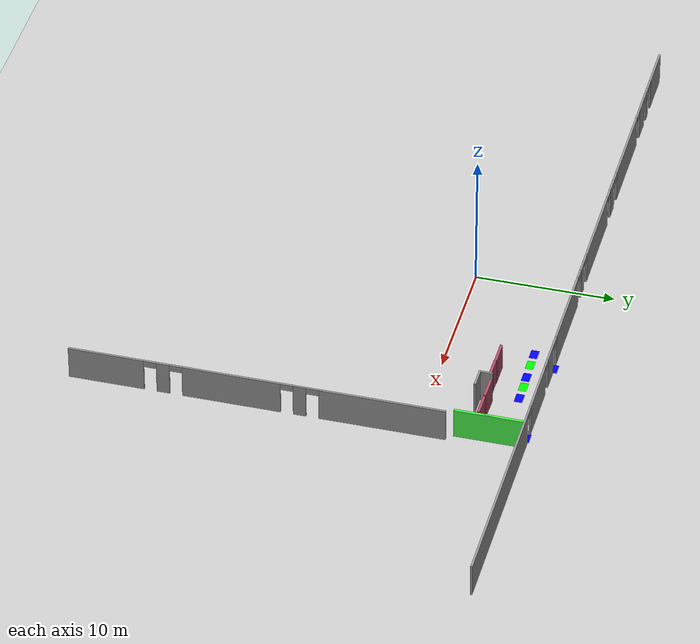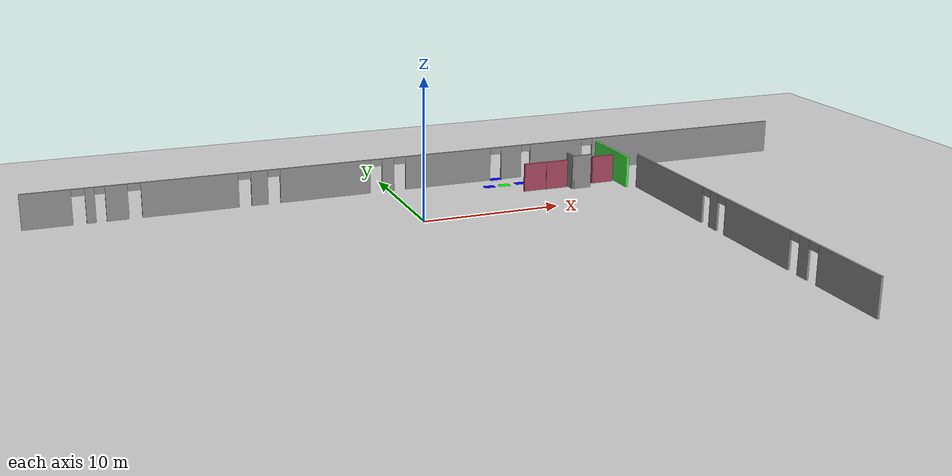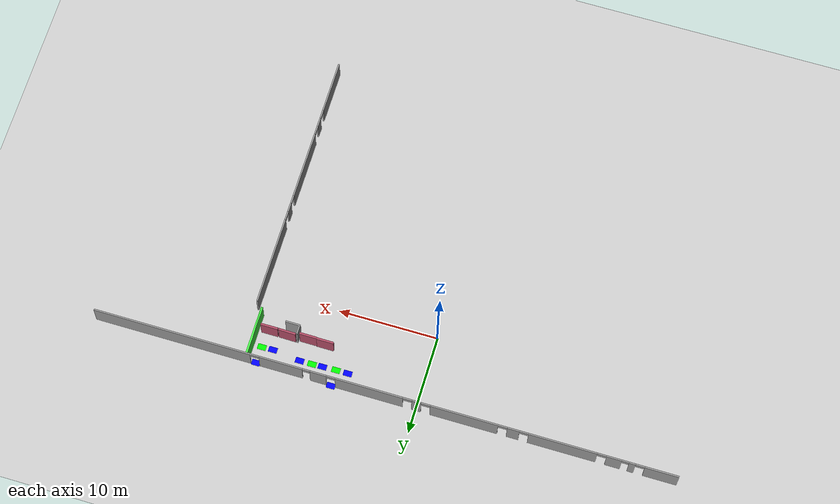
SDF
<sdf version="1.6">
 <world name="default">
  <model name="ground_plane">
   <pose>0 0 0.001 0 -0 0</pose>
   <static>1</static>
   <link name="link">
    <collision name="collision">
     <geometry><plane><normal>0 0 1</normal><size>100 100</size></plane></geometry>
     <surface><friction><ode><mu>100</mu><mu2>50</mu2></ode></friction></surface>
    </collision>
    <visual name="visual">
     <cast_shadows>0</cast_shadows>
     <geometry><plane><normal>0 0 1</normal><size>100 100</size></plane></geometry>
     <material>
      <script><uri>file://media/materials/scripts/gazebo.material</uri><name>Gazebo/Grey</name></script>
     </material>
    </visual>
   </link>
  </model>
  <model name="fin_se1f1.sdf">
   <pose>1.8125 -2.2901 0 0 -0 0</pose>
   <link name="Wall_164">
    <pose>15.8018 -8.91404 0 0 0 -1.5708</pose>
    <visual name="Wall_164_Visual_0">
     <pose>-8.91283 0 1.25 0 -0 0</pose>
     <geometry><box><size>8.92434 0.15 2.5</size></box></geometry>
     <material>
      <script><uri>file://media/materials/scripts/gazebo.material</uri><name>Gazebo/Grey</name></script>
      <ambient>1 1 1 1</ambient>
     </material>
     <meta><layer>0</layer></meta>
    </visual>
    <collision name="Wall_164_Collision_0">
     <geometry><box><size>8.92434 0.15 2.5</size></box></geometry>
     <pose>-8.91283 0 1.25 0 -0 0</pose>
    </collision>
    <visual name="Wall_164_Visual_1">
     <pose>-3.09555 0 1.25 0 -0 0</pose>
     <geometry><box><size>0.910221 0.15 2.5</size></box></geometry>
     <material>
      <script><uri>file://media/materials/scripts/gazebo.material</uri><name>Gazebo/Grey</name></script>
      <ambient>1 1 1 1</ambient>
     </material>
     <meta><layer>0</layer></meta>
    </visual>
    <collision name="Wall_164_Collision_1">
     <geometry><box><size>0.910221 0.15 2.5</size></box></geometry>
     <pose>-3.09555 0 1.25 0 -0 0</pose>
    </collision>
    <visual name="Wall_164_Visual_2">
     <pose>1.75182 0 1.25 0 -0 0</pose>
     <geometry><box><size>6.98452 0.15 2.5</size></box></geometry>
     <material>
      <script><uri>file://media/materials/scripts/gazebo.material</uri><name>Gazebo/Grey</name></script>
      <ambient>1 1 1 1</ambient>
     </material>
     <meta><layer>0</layer></meta>
    </visual>
    <collision name="Wall_164_Collision_2">
     <geometry><box><size>6.98452 0.15 2.5</size></box></geometry>
     <pose>1.75182 0 1.25 0 -0 0</pose>
    </collision>
    <visual name="Wall_164_Visual_3">
     <pose>6.60925 0 1.25 0 -0 0</pose>
     <geometry><box><size>0.930335 0.15 2.5</size></box></geometry>
     <material>
      <script><uri>file://media/materials/scripts/gazebo.material</uri><name>Gazebo/Grey</name></script>
      <ambient>1 1 1 1</ambient>
     </material>
     <meta><layer>0</layer></meta>
    </visual>
    <collision name="Wall_164_Collision_3">
     <geometry><box><size>0.930335 0.15 2.5</size></box></geometry>
     <pose>6.60925 0 1.25 0 -0 0</pose>
    </collision>
    <visual name="Wall_164_Visual_4">
     <pose>10.6747 0 1.25 0 -0 0</pose>
     <geometry><box><size>5.40058 0.15 2.5</size></box></geometry>
     <material>
      <script><uri>file://media/materials/scripts/gazebo.material</uri><name>Gazebo/Grey</name></script>
      <ambient>1 1 1 1</ambient>
     </material>
     <meta><layer>0</layer></meta>
    </visual>
    <collision name="Wall_164_Collision_4">
     <geometry><box><size>5.40058 0.15 2.5</size></box></geometry>
     <pose>10.6747 0 1.25 0 -0 0</pose>
    </collision>
    <visual name="Wall_164_Visual_5">
     <pose>-4.00066 0 2.25 0 -0 0</pose>
     <geometry><box><size>0.9 0.15 0.5</size></box></geometry>
     <material>
      <script><uri>file://media/materials/scripts/gazebo.material</uri><name>Gazebo/Grey</name></script>
      <ambient>1 1 1 1</ambient>
     </material>
     <meta><layer>0</layer></meta>
    </visual>
    <collision name="Wall_164_Collision_5">
     <geometry><box><size>0.9 0.15 0.5</size></box></geometry>
     <pose>-4.00066 0 2.25 0 -0 0</pose>
    </collision>
    <visual name="Wall_164_Visual_6">
     <pose>-2.19044 0 2.25 0 -0 0</pose>
     <geometry><box><size>0.9 0.15 0.5</size></box></geometry>
     <material>
      <script><uri>file://media/materials/scripts/gazebo.material</uri><name>Gazebo/Grey</name></script>
      <ambient>1 1 1 1</ambient>
     </material>
     <meta><layer>0</layer></meta>
    </visual>
    <collision name="Wall_164_Collision_6">
     <geometry><box><size>0.9 0.15 0.5</size></box></geometry>
     <pose>-2.19044 0 2.25 0 -0 0</pose>
    </collision>
    <visual name="Wall_164_Visual_7">
     <pose>5.69408 0 2.25 0 -0 0</pose>
     <geometry><box><size>0.9 0.15 0.5</size></box></geometry>
     <material>
      <script><uri>file://media/materials/scripts/gazebo.material</uri><name>Gazebo/Grey</name></script>
      <ambient>1 1 1 1</ambient>
     </material>
     <meta><layer>0</layer></meta>
    </visual>
    <collision name="Wall_164_Collision_7">
     <geometry><box><size>0.9 0.15 0.5</size></box></geometry>
     <pose>5.69408 0 2.25 0 -0 0</pose>
    </collision>
    <visual name="Wall_164_Visual_8">
     <pose>7.52442 0 2.25 0 -0 0</pose>
     <geometry><box><size>0.9 0.15 0.5</size></box></geometry>
     <material>
      <script><uri>file://media/materials/scripts/gazebo.material</uri><name>Gazebo/Grey</name></script>
      <ambient>1 1 1 1</ambient>
     </material>
     <meta><layer>0</layer></meta>
    </visual>
    <collision name="Wall_164_Collision_8">
     <geometry><box><size>0.9 0.15 0.5</size></box></geometry>
     <pose>7.52442 0 2.25 0 -0 0</pose>
    </collision>
   </link>
   <link name="Wall_2">
    <collision name="Wall_2_Collision">
     <geometry><box><size>1 0.15 2.5</size></box></geometry>
     <pose>0 0 1.25 0 -0 0</pose>
    </collision>
    <visual name="Wall_2_Visual">
     <pose>0 0 1.25 0 -0 0</pose>
     <geometry><box><size>1 0.15 2.5</size></box></geometry>
     <material>
      <script><uri>file://media/materials/scripts/gazebo.material</uri><name>Gazebo/Grey</name></script>
      <ambient>1 1 1 1</ambient>
     </material>
     <meta><layer>0</layer></meta>
    </visual>
    <pose>11.1004 6.09957 0 0 0 -1.5708</pose>
   </link>
   <link name="Wall_3">
    <collision name="Wall_3_Collision">
     <geometry><box><size>1.5 0.15 2.5</size></box></geometry>
     <pose>0 0 1.25 0 -0 0</pose>
    </collision>
    <visual name="Wall_3_Visual">
     <pose>0 0 1.25 0 -0 0</pose>
     <geometry><box><size>1.5 0.15 2.5</size></box></geometry>
     <material>
      <script><uri>file://media/materials/scripts/gazebo.material</uri><name>Gazebo/Grey</name></script>
      <ambient>1 1 1 1</ambient>
     </material>
     <meta><layer>0</layer></meta>
    </visual>
    <pose>11.7754 5.67457 0.001 0 -0 0</pose>
   </link>
   <link name="Wall_30">
    <pose>1.50043 9.87457 0.001 0 -0 0</pose>
    <visual name="Wall_30_Visual_0">
     <pose>-27.4547 0 1.25 0 -0 0</pose>
     <geometry><box><size>3.34055 0.15 2.5</size></box></geometry>
     <material>
      <script><uri>file://media/materials/scripts/gazebo.material</uri><name>Gazebo/Grey</name></script>
      <ambient>1 1 1 1</ambient>
     </material>
     <meta><layer>0</layer></meta>
    </visual>
    <collision name="Wall_30_Collision_0">
     <geometry><box><size>3.34055 0.15 2.5</size></box></geometry>
     <pose>-27.4547 0 1.25 0 -0 0</pose>
    </collision>
    <visual name="Wall_30_Visual_1">
     <pose>-24.5701 0 1.25 0 -0 0</pose>
     <geometry><box><size>0.628632 0.15 2.5</size></box></geometry>
     <material>
      <script><uri>file://media/materials/scripts/gazebo.material</uri><name>Gazebo/Grey</name></script>
      <ambient>1 1 1 1</ambient>
     </material>
     <meta><layer>0</layer></meta>
    </visual>
    <collision name="Wall_30_Collision_1">
     <geometry><box><size>0.628632 0.15 2.5</size></box></geometry>
     <pose>-24.5701 0 1.25 0 -0 0</pose>
    </collision>
    <visual name="Wall_30_Visual_2">
     <pose>-22.8102 0 1.25 0 -0 0</pose>
     <geometry><box><size>1.49352 0.15 2.5</size></box></geometry>
     <material>
      <script><uri>file://media/materials/scripts/gazebo.material</uri><name>Gazebo/Grey</name></script>
      <ambient>1 1 1 1</ambient>
     </material>
     <meta><layer>0</layer></meta>
    </visual>
    <collision name="Wall_30_Collision_2">
     <geometry><box><size>1.49352 0.15 2.5</size></box></geometry>
     <pose>-22.8102 0 1.25 0 -0 0</pose>
    </collision>
    <visual name="Wall_30_Visual_3">
     <pose>-17.8019 0 1.25 0 -0 0</pose>
     <geometry><box><size>6.72304 0.15 2.5</size></box></geometry>
     <material>
      <script><uri>file://media/materials/scripts/gazebo.material</uri><name>Gazebo/Grey</name></script>
      <ambient>1 1 1 1</ambient>
     </material>
     <meta><layer>0</layer></meta>
    </visual>
    <collision name="Wall_30_Collision_3">
     <geometry><box><size>6.72304 0.15 2.5</size></box></geometry>
     <pose>-17.8019 0 1.25 0 -0 0</pose>
    </collision>
    <visual name="Wall_30_Visual_4">
     <pose>-12.9445 0 1.25 0 -0 0</pose>
     <geometry><box><size>1.19181 0.15 2.5</size></box></geometry>
     <material>
      <script><uri>file://media/materials/scripts/gazebo.material</uri><name>Gazebo/Grey</name></script>
      <ambient>1 1 1 1</ambient>
     </material>
     <meta><layer>0</layer></meta>
    </visual>
    <collision name="Wall_30_Collision_4">
     <geometry><box><size>1.19181 0.15 2.5</size></box></geometry>
     <pose>-12.9445 0 1.25 0 -0 0</pose>
    </collision>
    <visual name="Wall_30_Visual_5">
     <pose>-8.09712 0 1.25 0 -0 0</pose>
     <geometry><box><size>6.70293 0.15 2.5</size></box></geometry>
     <material>
      <script><uri>file://media/materials/scripts/gazebo.material</uri><name>Gazebo/Grey</name></script>
      <ambient>1 1 1 1</ambient>
     </material>
     <meta><layer>0</layer></meta>
    </visual>
    <collision name="Wall_30_Collision_5">
     <geometry><box><size>6.70293 0.15 2.5</size></box></geometry>
     <pose>-8.09712 0 1.25 0 -0 0</pose>
    </collision>
    <visual name="Wall_30_Visual_6">
     <pose>-3.38049 0 1.25 0 -0 0</pose>
     <geometry><box><size>0.930335 0.15 2.5</size></box></geometry>
     <material>
      <script><uri>file://media/materials/scripts/gazebo.material</uri><name>Gazebo/Grey</name></script>
      <ambient>1 1 1 1</ambient>
     </material>
     <meta><layer>0</layer></meta>
    </visual>
    <collision name="Wall_30_Collision_6">
     <geometry><box><size>0.930335 0.15 2.5</size></box></geometry>
     <pose>-3.38049 0 1.25 0 -0 0</pose>
    </collision>
    <visual name="Wall_30_Visual_7">
     <pose>1.35626 0 1.25 0 -0 0</pose>
     <geometry><box><size>6.74316 0.15 2.5</size></box></geometry>
     <material>
      <script><uri>file://media/materials/scripts/gazebo.material</uri><name>Gazebo/Grey</name></script>
      <ambient>1 1 1 1</ambient>
     </material>
     <meta><layer>0</layer></meta>
    </visual>
    <collision name="Wall_30_Collision_7">
     <geometry><box><size>6.74316 0.15 2.5</size></box></geometry>
     <pose>1.35626 0 1.25 0 -0 0</pose>
    </collision>
    <visual name="Wall_30_Visual_8">
     <pose>6.44499 0 1.25 0 -0 0</pose>
     <geometry><box><size>1.63431 0.15 2.5</size></box></geometry>
     <material>
      <script><uri>file://media/materials/scripts/gazebo.material</uri><name>Gazebo/Grey</name></script>
      <ambient>1 1 1 1</ambient>
     </material>
     <meta><layer>0</layer></meta>
    </visual>
    <collision name="Wall_30_Collision_8">
     <geometry><box><size>1.63431 0.15 2.5</size></box></geometry>
     <pose>6.44499 0 1.25 0 -0 0</pose>
    </collision>
    <visual name="Wall_30_Visual_9">
     <pose>10.1962 0 1.25 0 -0 0</pose>
     <geometry><box><size>4.34964 0.15 2.5</size></box></geometry>
     <material>
      <script><uri>file://media/materials/scripts/gazebo.material</uri><name>Gazebo/Grey</name></script>
      <ambient>1 1 1 1</ambient>
     </material>
     <meta><layer>0</layer></meta>
    </visual>
    <collision name="Wall_30_Collision_9">
     <geometry><box><size>4.34964 0.15 2.5</size></box></geometry>
     <pose>10.1962 0 1.25 0 -0 0</pose>
    </collision>
    <visual name="Wall_30_Visual_10">
     <pose>21.198 0 1.25 0 -0 0</pose>
     <geometry><box><size>15.854 0.15 2.5</size></box></geometry>
     <material>
      <script><uri>file://media/materials/scripts/gazebo.material</uri><name>Gazebo/Grey</name></script>
      <ambient>1 1 1 1</ambient>
     </material>
     <meta><layer>0</layer></meta>
    </visual>
    <collision name="Wall_30_Collision_10">
     <geometry><box><size>15.854 0.15 2.5</size></box></geometry>
     <pose>21.198 0 1.25 0 -0 0</pose>
    </collision>
    <visual name="Wall_30_Visual_11">
     <pose>-25.3345 0 2.25 0 -0 0</pose>
     <geometry><box><size>0.9 0.15 0.5</size></box></geometry>
     <material>
      <script><uri>file://media/materials/scripts/gazebo.material</uri><name>Gazebo/Grey</name></script>
      <ambient>1 1 1 1</ambient>
     </material>
     <meta><layer>0</layer></meta>
    </visual>
    <collision name="Wall_30_Collision_11">
     <geometry><box><size>0.9 0.15 0.5</size></box></geometry>
     <pose>-25.3345 0 2.25 0 -0 0</pose>
    </collision>
    <visual name="Wall_30_Visual_12">
     <pose>-23.9064 0 2.25 0 -0 0</pose>
     <geometry><box><size>0.698864 0.15 0.5</size></box></geometry>
     <material>
      <script><uri>file://media/materials/scripts/gazebo.material</uri><name>Gazebo/Grey</name></script>
      <ambient>1 1 1 1</ambient>
     </material>
     <meta><layer>0</layer></meta>
    </visual>
    <collision name="Wall_30_Collision_12">
     <geometry><box><size>0.698864 0.15 0.5</size></box></geometry>
     <pose>-23.9064 0 2.25 0 -0 0</pose>
    </collision>
    <visual name="Wall_30_Visual_13">
     <pose>-21.6134 0 2.25 0 -0 0</pose>
     <geometry><box><size>0.9 0.15 0.5</size></box></geometry>
     <material>
      <script><uri>file://media/materials/scripts/gazebo.material</uri><name>Gazebo/Grey</name></script>
      <ambient>1 1 1 1</ambient>
     </material>
     <meta><layer>0</layer></meta>
    </visual>
    <collision name="Wall_30_Collision_13">
     <geometry><box><size>0.9 0.15 0.5</size></box></geometry>
     <pose>-21.6134 0 2.25 0 -0 0</pose>
    </collision>
    <visual name="Wall_30_Visual_14">
     <pose>-13.9904 0 2.25 0 -0 0</pose>
     <geometry><box><size>0.9 0.15 0.5</size></box></geometry>
     <material>
      <script><uri>file://media/materials/scripts/gazebo.material</uri><name>Gazebo/Grey</name></script>
      <ambient>1 1 1 1</ambient>
     </material>
     <meta><layer>0</layer></meta>
    </visual>
    <collision name="Wall_30_Collision_14">
     <geometry><box><size>0.9 0.15 0.5</size></box></geometry>
     <pose>-13.9904 0 2.25 0 -0 0</pose>
    </collision>
    <visual name="Wall_30_Visual_15">
     <pose>-11.8986 0 2.25 0 -0 0</pose>
     <geometry><box><size>0.9 0.15 0.5</size></box></geometry>
     <material>
      <script><uri>file://media/materials/scripts/gazebo.material</uri><name>Gazebo/Grey</name></script>
      <ambient>1 1 1 1</ambient>
     </material>
     <meta><layer>0</layer></meta>
    </visual>
    <collision name="Wall_30_Collision_15">
     <geometry><box><size>0.9 0.15 0.5</size></box></geometry>
     <pose>-11.8986 0 2.25 0 -0 0</pose>
    </collision>
    <visual name="Wall_30_Visual_16">
     <pose>-4.29566 0 2.25 0 -0 0</pose>
     <geometry><box><size>0.9 0.15 0.5</size></box></geometry>
     <material>
      <script><uri>file://media/materials/scripts/gazebo.material</uri><name>Gazebo/Grey</name></script>
      <ambient>1 1 1 1</ambient>
     </material>
     <meta><layer>0</layer></meta>
    </visual>
    <collision name="Wall_30_Collision_16">
     <geometry><box><size>0.9 0.15 0.5</size></box></geometry>
     <pose>-4.29566 0 2.25 0 -0 0</pose>
    </collision>
    <visual name="Wall_30_Visual_17">
     <pose>-2.46532 0 2.25 0 -0 0</pose>
     <geometry><box><size>0.9 0.15 0.5</size></box></geometry>
     <material>
      <script><uri>file://media/materials/scripts/gazebo.material</uri><name>Gazebo/Grey</name></script>
      <ambient>1 1 1 1</ambient>
     </material>
     <meta><layer>0</layer></meta>
    </visual>
    <collision name="Wall_30_Collision_17">
     <geometry><box><size>0.9 0.15 0.5</size></box></geometry>
     <pose>-2.46532 0 2.25 0 -0 0</pose>
    </collision>
    <visual name="Wall_30_Visual_18">
     <pose>5.17784 0 2.25 0 -0 0</pose>
     <geometry><box><size>0.9 0.15 0.5</size></box></geometry>
     <material>
      <script><uri>file://media/materials/scripts/gazebo.material</uri><name>Gazebo/Grey</name></script>
      <ambient>1 1 1 1</ambient>
     </material>
     <meta><layer>0</layer></meta>
    </visual>
    <collision name="Wall_30_Collision_18">
     <geometry><box><size>0.9 0.15 0.5</size></box></geometry>
     <pose>5.17784 0 2.25 0 -0 0</pose>
    </collision>
    <visual name="Wall_30_Visual_19">
     <pose>7.64175 0 2.25 0 -0 0</pose>
     <geometry><box><size>0.759205 0.15 0.5</size></box></geometry>
     <material>
      <script><uri>file://media/materials/scripts/gazebo.material</uri><name>Gazebo/Grey</name></script>
      <ambient>1 1 1 1</ambient>
     </material>
     <meta><layer>0</layer></meta>
    </visual>
    <collision name="Wall_30_Collision_19">
     <geometry><box><size>0.759205 0.15 0.5</size></box></geometry>
     <pose>7.64175 0 2.25 0 -0 0</pose>
    </collision>
    <visual name="Wall_30_Visual_20">
     <pose>12.821 0 2.25 0 -0 0</pose>
     <geometry><box><size>0.9 0.15 0.5</size></box></geometry>
     <material>
      <script><uri>file://media/materials/scripts/gazebo.material</uri><name>Gazebo/Grey</name></script>
      <ambient>1 1 1 1</ambient>
     </material>
     <meta><layer>0</layer></meta>
    </visual>
    <collision name="Wall_30_Collision_20">
     <geometry><box><size>0.9 0.15 0.5</size></box></geometry>
     <pose>12.821 0 2.25 0 -0 0</pose>
    </collision>
   </link>
   <static>1</static>
  </model>
  <model name="doorOutside_clone_8_clone_7_clone_0">
   <link name="link">
    <pose>0.155539 -0.366282 0.216958 0 -0 0</pose>
    <inertial>
     <mass>2.13199</mass>
     <inertia>
      <ixx>0.452656</ixx>
      <ixy>0</ixy>
      <ixz>0</ixz>
      <iyy>0.796738</iyy>
      <iyz>0</iyz>
      <izz>0.699414</izz>
     </inertia>
     <pose>0 0 0.001 0 -0 0</pose>
    </inertial>
    <visual name="visual">
     <geometry><box><size>1.71368 0.198843 2.05986</size></box></geometry>
     <material>
      <script><name>Gazebo/Grey</name><uri>file://media/materials/scripts/gazebo.material</uri></script>
      <ambient>0.7 0.3 0.4 1</ambient>
      <diffuse>0.7 0.7 0.7 1</diffuse>
      <specular>0.01 0.01 0.01 1</specular>
      <emissive>0 0 0 1</emissive>
      <shader type="vertex"><normal_map>__default__</normal_map></shader>
      <lighting>0</lighting>
     </material>
     <pose>0 0 0.001 0 -0 0</pose>
    </visual>
    <collision name="collision">
     <pose>0 0 0.001 0 -0 0</pose>
     <geometry><box><size>1.71368 0.198843 2.05986</size></box></geometry>
     <surface>
      <friction>
       <ode><mu>1</mu><mu2>1</mu2><fdir1>0 0 0</fdir1><slip1>0</slip1><slip2>0</slip2></ode>
       <torsional>
        <coefficient>1</coefficient>
        <patch_radius>0</patch_radius>
        <surface_radius>0</surface_radius>
        <use_patch_radius>1</use_patch_radius>
        <ode><slip>0</slip></ode>
       </torsional>
      </friction>
      <bounce><restitution_coefficient>0</restitution_coefficient><threshold>1e+06</threshold></bounce>
      <contact>
       <collide_without_contact>0</collide_without_contact>
       <collide_without_contact_bitmask>1</collide_without_contact_bitmask>
       <collide_bitmask>1</collide_bitmask>
       <ode>
        <soft_cfm>0</soft_cfm>
        <soft_erp>0.2</soft_erp>
        <kp>1e+13</kp>
        <kd>1</kd>
        <max_vel>0.01</max_vel>
        <min_depth>0</min_depth>
       </ode>
       <bullet>
        <split_impulse>1</split_impulse>
        <split_impulse_penetration_threshold>-0.01</split_impulse_penetration_threshold>
        <soft_cfm>0</soft_cfm>
        <soft_erp>0.2</soft_erp>
        <kp>1e+13</kp>
        <kd>1</kd>
       </bullet>
      </contact>
     </surface>
    </collision>
   </link>
   <static>1</static>
   <pose>11.7102 4.37868 0.812972 -1e-06 -0 -1.8e-05</pose>
  </model>
  <model name="doorOutside_clone_8_clone_7_clone_1">
   <link name="link">
    <pose>0.155539 -0.366282 0.216958 0 -0 0</pose>
    <inertial>
     <mass>2.13199</mass>
     <inertia>
      <ixx>0.452656</ixx>
      <ixy>0</ixy>
      <ixz>0</ixz>
      <iyy>0.796738</iyy>
      <iyz>0</iyz>
      <izz>0.699414</izz>
     </inertia>
     <pose>0 0 0.001 0 -0 0</pose>
    </inertial>
    <visual name="visual">
     <geometry><box><size>1.71368 0.198843 2.05986</size></box></geometry>
     <material>
      <script><name>Gazebo/Grey</name><uri>file://media/materials/scripts/gazebo.material</uri></script>
      <ambient>0.7 0.3 0.4 1</ambient>
      <diffuse>0.7 0.7 0.7 1</diffuse>
      <specular>0.01 0.01 0.01 1</specular>
      <emissive>0 0 0 1</emissive>
      <shader type="vertex"><normal_map>__default__</normal_map></shader>
      <lighting>0</lighting>
     </material>
     <pose>0 0 0.001 0 -0 0</pose>
    </visual>
    <collision name="collision">
     <pose>0 0 0.001 0 -0 0</pose>
     <geometry><box><size>1.71368 0.198843 2.05986</size></box></geometry>
     <surface>
      <friction>
       <ode><mu>1</mu><mu2>1</mu2><fdir1>0 0 0</fdir1><slip1>0</slip1><slip2>0</slip2></ode>
       <torsional>
        <coefficient>1</coefficient>
        <patch_radius>0</patch_radius>
        <surface_radius>0</surface_radius>
        <use_patch_radius>1</use_patch_radius>
        <ode><slip>0</slip></ode>
       </torsional>
      </friction>
      <bounce><restitution_coefficient>0</restitution_coefficient><threshold>1e+06</threshold></bounce>
      <contact>
       <collide_without_contact>0</collide_without_contact>
       <collide_without_contact_bitmask>1</collide_without_contact_bitmask>
       <collide_bitmask>1</collide_bitmask>
       <ode>
        <soft_cfm>0</soft_cfm>
        <soft_erp>0.2</soft_erp>
        <kp>1e+13</kp>
        <kd>1</kd>
        <max_vel>0.01</max_vel>
        <min_depth>0</min_depth>
       </ode>
       <bullet>
        <split_impulse>1</split_impulse>
        <split_impulse_penetration_threshold>-0.01</split_impulse_penetration_threshold>
        <soft_cfm>0</soft_cfm>
        <soft_erp>0.2</soft_erp>
        <kp>1e+13</kp>
        <kd>1</kd>
       </bullet>
      </contact>
     </surface>
    </collision>
   </link>
   <static>1</static>
   <pose>9.99646 4.41106 0.813029 0.000127 2e-06 -2e-06</pose>
  </model>
  <model name="wall_static_1_clone">
   <link name="link">
    <inertial>
     <mass>1</mass>
     <inertia>
      <ixx>0.166667</ixx>
      <ixy>0</ixy>
      <ixz>0</ixz>
      <iyy>0.166667</iyy>
      <iyz>0</iyz>
      <izz>0.166667</izz>
     </inertia>
     <pose>0 0 0.001 0 -0 0</pose>
    </inertial>
    <visual name="ModelPreview_1::link::visual_1">
     <geometry><box><size>4.92373 0.195361 2.3796</size></box></geometry>
     <material>
      <script><name>Gazebo/Grey</name><uri>file://media/materials/scripts/gazebo.material</uri></script>
      <ambient>0.3 1 0.3 1</ambient>
      <diffuse>0.7 0.7 0.7 1</diffuse>
      <specular>0.01 0.01 0.01 1</specular>
      <emissive>0 0 0 1</emissive>
      <shader type="vertex"><normal_map>__default__</normal_map></shader>
     </material>
     <pose>0 0 0.001 0 -0 0</pose>
    </visual>
    <visual name="visual">
     <geometry><box><size>5 0.2 2.3796</size></box></geometry>
     <material>
      <script><name>Gazebo/Grey</name><uri>file://media/materials/scripts/gazebo.material</uri></script>
      <ambient>0.3 1 0.3 1</ambient>
      <diffuse>0.7 0.7 0.7 1</diffuse>
      <specular>0.01 0.01 0.01 1</specular>
      <emissive>0 0 0 1</emissive>
      <shader type="vertex"><normal_map>__default__</normal_map></shader>
     </material>
     <pose>0 0 0.001 0 -0 0</pose>
    </visual>
    <collision name="collision">
     <pose>0 0 0.001 0 -0 0</pose>
     <geometry><box><size>4.92373 0.195361 2.3796</size></box></geometry>
     <surface>
      <friction>
       <ode><mu>1</mu><mu2>1</mu2><fdir1>0 0 0</fdir1><slip1>0</slip1><slip2>0</slip2></ode>
       <torsional>
        <coefficient>1</coefficient>
        <patch_radius>0</patch_radius>
        <surface_radius>0</surface_radius>
        <use_patch_radius>1</use_patch_radius>
        <ode><slip>0</slip></ode>
       </torsional>
      </friction>
      <bounce><restitution_coefficient>0</restitution_coefficient><threshold>1e+06</threshold></bounce>
      <contact>
       <collide_without_contact>0</collide_without_contact>
       <collide_without_contact_bitmask>1</collide_without_contact_bitmask>
       <collide_bitmask>1</collide_bitmask>
       <ode>
        <soft_cfm>0</soft_cfm>
        <soft_erp>0.2</soft_erp>
        <kp>1e+13</kp>
        <kd>1</kd>
        <max_vel>0.01</max_vel>
        <min_depth>0</min_depth>
       </ode>
       <bullet>
        <split_impulse>1</split_impulse>
        <split_impulse_penetration_threshold>-0.01</split_impulse_penetration_threshold>
        <soft_cfm>0</soft_cfm>
        <soft_erp>0.2</soft_erp>
        <kp>1e+13</kp>
        <kd>1</kd>
       </bullet>
      </contact>
     </surface>
    </collision>
   </link>
   <static>1</static>
   <pose>16.9955 5.06698 1.02486 0 -0 1.57305</pose>
  </model>
  <model name="intersection_13">
   <link name="link">
    <pose>0 0 0.001 0 -0 0</pose>
    <inertial>
     <mass>0.0352517</mass>
     <inertia>
      <ixx>0.000997067</ixx>
      <ixy>0</ixy>
      <ixz>0</ixz>
      <iyy>0.00220147</iyy>
      <iyz>0</iyz>
      <izz>0.0031692</izz>
     </inertia>
     <pose>0 0 0.001 0 -0 0</pose>
    </inertial>
    <visual name="visual">
     <geometry><box><size>0.862743 0.578289 1e-06</size></box></geometry>
     <material>
      <script><name>Gazebo/Grey</name><uri>file://media/materials/scripts/gazebo.material</uri></script>
      <ambient>0 0 1 1</ambient>
      <diffuse>0 0 1 1</diffuse>
      <specular>0 0 1 1</specular>
      <emissive>0 0 1 1</emissive>
      <shader type="vertex"><normal_map>__default__</normal_map></shader>
     </material>
     <pose>0 0 0.001 0 -0 0</pose>
    </visual>
    <collision name="collision">
     <pose>0 0 0.001 0 -0 0</pose>
     <geometry><box><size>0.862743 0.578289 0.000477</size></box></geometry>
     <surface>
      <friction>
       <ode><mu>1</mu><mu2>1</mu2><fdir1>0 0 0</fdir1><slip1>0</slip1><slip2>0</slip2></ode>
       <torsional>
        <coefficient>1</coefficient>
        <patch_radius>0</patch_radius>
        <surface_radius>0</surface_radius>
        <use_patch_radius>1</use_patch_radius>
        <ode><slip>0</slip></ode>
       </torsional>
      </friction>
      <bounce><restitution_coefficient>0</restitution_coefficient><threshold>1e+06</threshold></bounce>
      <contact>
       <collide_without_contact>0</collide_without_contact>
       <collide_without_contact_bitmask>1</collide_without_contact_bitmask>
       <collide_bitmask>1</collide_bitmask>
       <ode>
        <soft_cfm>0</soft_cfm>
        <soft_erp>0.2</soft_erp>
        <kp>1e+13</kp>
        <kd>1</kd>
        <max_vel>0.01</max_vel>
        <min_depth>0</min_depth>
       </ode>
       <bullet>
        <split_impulse>1</split_impulse>
        <split_impulse_penetration_threshold>-0.01</split_impulse_penetration_threshold>
        <soft_cfm>0</soft_cfm>
        <soft_erp>0.2</soft_erp>
        <kp>1e+13</kp>
        <kd>1</kd>
       </bullet>
      </contact>
     </surface>
    </collision>
   </link>
   <static>1</static>
   <pose>16.1451 7.44359 0 0 -0 0</pose>
  </model>
  <model name="intersection_19">
   <link name="link">
    <pose>0 0 0.001 0 -0 0</pose>
    <inertial>
     <mass>0.0352517</mass>
     <inertia>
      <ixx>0.000997067</ixx>
      <ixy>0</ixy>
      <ixz>0</ixz>
      <iyy>0.00220147</iyy>
      <iyz>0</iyz>
      <izz>0.0031692</izz>
     </inertia>
     <pose>0 0 0.001 0 -0 0</pose>
    </inertial>
    <visual name="visual">
     <geometry><box><size>0.862743 0.578289 1e-06</size></box></geometry>
     <material>
      <script><name>Gazebo/Grey</name><uri>file://media/materials/scripts/gazebo.material</uri></script>
      <ambient>0 0 1 1</ambient>
      <diffuse>0 0 1 1</diffuse>
      <specular>0 0 1 1</specular>
      <emissive>0 0 1 1</emissive>
      <shader type="vertex"><normal_map>__default__</normal_map></shader>
     </material>
     <pose>0 0 0.001 0 -0 0</pose>
    </visual>
    <collision name="collision">
     <pose>0 0 0.001 0 -0 0</pose>
     <geometry><box><size>0.862743 0.578289 0.000477</size></box></geometry>
     <surface>
      <friction>
       <ode><mu>1</mu><mu2>1</mu2><fdir1>0 0 0</fdir1><slip1>0</slip1><slip2>0</slip2></ode>
       <torsional>
        <coefficient>1</coefficient>
        <patch_radius>0</patch_radius>
        <surface_radius>0</surface_radius>
        <use_patch_radius>1</use_patch_radius>
        <ode><slip>0</slip></ode>
       </torsional>
      </friction>
      <bounce><restitution_coefficient>0</restitution_coefficient><threshold>1e+06</threshold></bounce>
      <contact>
       <collide_without_contact>0</collide_without_contact>
       <collide_without_contact_bitmask>1</collide_without_contact_bitmask>
       <collide_bitmask>1</collide_bitmask>
       <ode>
        <soft_cfm>0</soft_cfm>
        <soft_erp>0.2</soft_erp>
        <kp>1e+13</kp>
        <kd>1</kd>
        <max_vel>0.01</max_vel>
        <min_depth>0</min_depth>
       </ode>
       <bullet>
        <split_impulse>1</split_impulse>
        <split_impulse_penetration_threshold>-0.01</split_impulse_penetration_threshold>
        <soft_cfm>0</soft_cfm>
        <soft_erp>0.2</soft_erp>
        <kp>1e+13</kp>
        <kd>1</kd>
       </bullet>
      </contact>
     </surface>
    </collision>
   </link>
   <static>1</static>
   <pose>8.49852 7.60605 0 0 -0 0</pose>
  </model>
  <model name="corridor_7">
   <link name="link">
    <pose>0 0 0.001 0 -0 0</pose>
    <inertial>
     <mass>0.0352517</mass>
     <inertia>
      <ixx>0.00099707</ixx>
      <ixy>0</ixy>
      <ixz>0</ixz>
      <iyy>0.00220147</iyy>
      <iyz>0</iyz>
      <izz>0.0031692</izz>
     </inertia>
     <pose>0 0 0.001 0 -0 0</pose>
    </inertial>
    <visual name="visual">
     <geometry><box><size>0.862743 0.578289 1e-06</size></box></geometry>
     <material>
      <script><name>Gazebo/Grey</name><uri>file://media/materials/scripts/gazebo.material</uri></script>
      <ambient>0 1 0 1</ambient>
      <diffuse>0 1 0 1</diffuse>
      <specular>0 1 0 1</specular>
      <emissive>0 1 0 1</emissive>
      <shader type="vertex"><normal_map>__default__</normal_map></shader>
     </material>
     <pose>0 0 0.001 0 -0 0</pose>
    </visual>
    <collision name="collision">
     <pose>0 0 0.001 0 -0 0</pose>
     <geometry><box><size>0.862743 0.578289 0.000477</size></box></geometry>
     <surface>
      <friction>
       <ode><mu>1</mu><mu2>1</mu2><fdir1>0 0 0</fdir1><slip1>0</slip1><slip2>0</slip2></ode>
       <torsional>
        <coefficient>1</coefficient>
        <patch_radius>0</patch_radius>
        <surface_radius>0</surface_radius>
        <use_patch_radius>1</use_patch_radius>
        <ode><slip>0</slip></ode>
       </torsional>
      </friction>
      <bounce><restitution_coefficient>0</restitution_coefficient><threshold>1e+06</threshold></bounce>
      <contact>
       <collide_without_contact>0</collide_without_contact>
       <collide_without_contact_bitmask>1</collide_without_contact_bitmask>
       <collide_bitmask>1</collide_bitmask>
       <ode>
        <soft_cfm>0</soft_cfm>
        <soft_erp>0.2</soft_erp>
        <kp>1e+13</kp>
        <kd>1</kd>
        <max_vel>0.01</max_vel>
        <min_depth>0</min_depth>
       </ode>
       <bullet>
        <split_impulse>1</split_impulse>
        <split_impulse_penetration_threshold>-0.01</split_impulse_penetration_threshold>
        <soft_cfm>0</soft_cfm>
        <soft_erp>0.2</soft_erp>
        <kp>1e+13</kp>
        <kd>1</kd>
       </bullet>
      </contact>
     </surface>
    </collision>
   </link>
   <static>1</static>
   <pose>8.50717 5.93767 0 0 -0 0</pose>
  </model>
  <model name="corridor_8">
   <link name="link">
    <pose>0 0 0.001 0 -0 0</pose>
    <inertial>
     <mass>0.0352517</mass>
     <inertia>
      <ixx>0.00099707</ixx>
      <ixy>0</ixy>
      <ixz>0</ixz>
      <iyy>0.00220147</iyy>
      <iyz>0</iyz>
      <izz>0.0031692</izz>
     </inertia>
     <pose>0 0 0.001 0 -0 0</pose>
    </inertial>
    <visual name="visual">
     <geometry><box><size>0.862743 0.578289 1e-06</size></box></geometry>
     <material>
      <script><name>Gazebo/Grey</name><uri>file://media/materials/scripts/gazebo.material</uri></script>
      <ambient>0 1 0 1</ambient>
      <diffuse>0 1 0 1</diffuse>
      <specular>0 1 0 1</specular>
      <emissive>0 1 0 1</emissive>
      <shader type="vertex"><normal_map>__default__</normal_map></shader>
     </material>
     <pose>0 0 0.001 0 -0 0</pose>
    </visual>
    <collision name="collision">
     <pose>0 0 0.001 0 -0 0</pose>
     <geometry><box><size>0.862743 0.578289 0.000477</size></box></geometry>
     <surface>
      <friction>
       <ode><mu>1</mu><mu2>1</mu2><fdir1>0 0 0</fdir1><slip1>0</slip1><slip2>0</slip2></ode>
       <torsional>
        <coefficient>1</coefficient>
        <patch_radius>0</patch_radius>
        <surface_radius>0</surface_radius>
        <use_patch_radius>1</use_patch_radius>
        <ode><slip>0</slip></ode>
       </torsional>
      </friction>
      <bounce><restitution_coefficient>0</restitution_coefficient><threshold>1e+06</threshold></bounce>
      <contact>
       <collide_without_contact>0</collide_without_contact>
       <collide_without_contact_bitmask>1</collide_without_contact_bitmask>
       <collide_bitmask>1</collide_bitmask>
       <ode>
        <soft_cfm>0</soft_cfm>
        <soft_erp>0.2</soft_erp>
        <kp>1e+13</kp>
        <kd>1</kd>
        <max_vel>0.01</max_vel>
        <min_depth>0</min_depth>
       </ode>
       <bullet>
        <split_impulse>1</split_impulse>
        <split_impulse_penetration_threshold>-0.01</split_impulse_penetration_threshold>
        <soft_cfm>0</soft_cfm>
        <soft_erp>0.2</soft_erp>
        <kp>1e+13</kp>
        <kd>1</kd>
       </bullet>
      </contact>
     </surface>
    </collision>
   </link>
   <static>1</static>
   <pose>10.9081 6.02019 0 0 -0 0</pose>
  </model>
  <model name="corridor_9">
   <link name="link">
    <pose>0 0 0.001 0 -0 0</pose>
    <inertial>
     <mass>0.0352517</mass>
     <inertia>
      <ixx>0.00099707</ixx>
      <ixy>0</ixy>
      <ixz>0</ixz>
      <iyy>0.00220147</iyy>
      <iyz>0</iyz>
      <izz>0.0031692</izz>
     </inertia>
     <pose>0 0 0.001 0 -0 0</pose>
    </inertial>
    <visual name="visual">
     <geometry><box><size>0.862743 0.578289 1e-06</size></box></geometry>
     <material>
      <script><name>Gazebo/Grey</name><uri>file://media/materials/scripts/gazebo.material</uri></script>
      <ambient>0 1 0 1</ambient>
      <diffuse>0 1 0 1</diffuse>
      <specular>0 1 0 1</specular>
      <emissive>0 1 0 1</emissive>
      <shader type="vertex"><normal_map>__default__</normal_map></shader>
     </material>
     <pose>0 0 0.001 0 -0 0</pose>
    </visual>
    <collision name="collision">
     <pose>0 0 0.001 0 -0 0</pose>
     <geometry><box><size>0.862743 0.578289 0.000477</size></box></geometry>
     <surface>
      <friction>
       <ode><mu>1</mu><mu2>1</mu2><fdir1>0 0 0</fdir1><slip1>0</slip1><slip2>0</slip2></ode>
       <torsional>
        <coefficient>1</coefficient>
        <patch_radius>0</patch_radius>
        <surface_radius>0</surface_radius>
        <use_patch_radius>1</use_patch_radius>
        <ode><slip>0</slip></ode>
       </torsional>
      </friction>
      <bounce><restitution_coefficient>0</restitution_coefficient><threshold>1e+06</threshold></bounce>
      <contact>
       <collide_without_contact>0</collide_without_contact>
       <collide_without_contact_bitmask>1</collide_without_contact_bitmask>
       <collide_bitmask>1</collide_bitmask>
       <ode>
        <soft_cfm>0</soft_cfm>
        <soft_erp>0.2</soft_erp>
        <kp>1e+13</kp>
        <kd>1</kd>
        <max_vel>0.01</max_vel>
        <min_depth>0</min_depth>
       </ode>
       <bullet>
        <split_impulse>1</split_impulse>
        <split_impulse_penetration_threshold>-0.01</split_impulse_penetration_threshold>
        <soft_cfm>0</soft_cfm>
        <soft_erp>0.2</soft_erp>
        <kp>1e+13</kp>
        <kd>1</kd>
       </bullet>
      </contact>
     </surface>
    </collision>
   </link>
   <static>1</static>
   <pose>16.0873 5.74288 0 0 -0 0</pose>
  </model>
  <model name="intersection_7">
   <link name="link">
    <pose>0 0 0.001 0 -0 0</pose>
    <inertial>
     <mass>0.0352517</mass>
     <inertia>
      <ixx>0.000997067</ixx>
      <ixy>0</ixy>
      <ixz>0</ixz>
      <iyy>0.00220147</iyy>
      <iyz>0</iyz>
      <izz>0.0031692</izz>
     </inertia>
     <pose>0 0 0.001 0 -0 0</pose>
    </inertial>
    <visual name="visual">
     <geometry><box><size>0.862743 0.578289 1e-06</size></box></geometry>
     <material>
      <script><name>Gazebo/Grey</name><uri>file://media/materials/scripts/gazebo.material</uri></script>
      <ambient>0 0 1 1</ambient>
      <diffuse>0 0 1 1</diffuse>
      <specular>0 0 1 1</specular>
      <emissive>0 0 1 1</emissive>
      <shader type="vertex"><normal_map>__default__</normal_map></shader>
     </material>
     <pose>0 0 0.001 0 -0 0</pose>
    </visual>
    <collision name="collision">
     <pose>0 0 0.001 0 -0 0</pose>
     <geometry><box><size>0.862743 0.578289 0.000477</size></box></geometry>
     <surface>
      <friction>
       <ode><mu>1</mu><mu2>1</mu2><fdir1>0 0 0</fdir1><slip1>0</slip1><slip2>0</slip2></ode>
       <torsional>
        <coefficient>1</coefficient>
        <patch_radius>0</patch_radius>
        <surface_radius>0</surface_radius>
        <use_patch_radius>1</use_patch_radius>
        <ode><slip>0</slip></ode>
       </torsional>
      </friction>
      <bounce><restitution_coefficient>0</restitution_coefficient><threshold>1e+06</threshold></bounce>
      <contact>
       <collide_without_contact>0</collide_without_contact>
       <collide_without_contact_bitmask>1</collide_without_contact_bitmask>
       <collide_bitmask>1</collide_bitmask>
       <ode>
        <soft_cfm>0</soft_cfm>
        <soft_erp>0.2</soft_erp>
        <kp>1e+13</kp>
        <kd>1</kd>
        <max_vel>0.01</max_vel>
        <min_depth>0</min_depth>
       </ode>
       <bullet>
        <split_impulse>1</split_impulse>
        <split_impulse_penetration_threshold>-0.01</split_impulse_penetration_threshold>
        <soft_cfm>0</soft_cfm>
        <soft_erp>0.2</soft_erp>
        <kp>1e+13</kp>
        <kd>1</kd>
       </bullet>
      </contact>
     </surface>
    </collision>
   </link>
   <static>1</static>
   <pose>12.155 6.02784 0 0 -0 0</pose>
  </model>
  <model name="intersection_21">
   <link name="link">
    <pose>0 0 0.001 0 -0 0</pose>
    <inertial>
     <mass>0.0352517</mass>
     <inertia>
      <ixx>0.000997067</ixx>
      <ixy>0</ixy>
      <ixz>0</ixz>
      <iyy>0.00220147</iyy>
      <iyz>0</iyz>
      <izz>0.0031692</izz>
     </inertia>
     <pose>0 0 0.001 0 -0 0</pose>
    </inertial>
    <visual name="visual">
     <geometry><box><size>0.862743 0.578289 1e-06</size></box></geometry>
     <material>
      <script><name>Gazebo/Grey</name><uri>file://media/materials/scripts/gazebo.material</uri></script>
      <ambient>0 0 1 1</ambient>
      <diffuse>0 0 1 1</diffuse>
      <specular>0 0 1 1</specular>
      <emissive>0 0 1 1</emissive>
      <shader type="vertex"><normal_map>__default__</normal_map></shader>
     </material>
     <pose>0 0 0.001 0 -0 0</pose>
    </visual>
    <collision name="collision">
     <pose>0 0 0.001 0 -0 0</pose>
     <geometry><box><size>0.862743 0.578289 0.000477</size></box></geometry>
     <surface>
      <friction>
       <ode><mu>1</mu><mu2>1</mu2><fdir1>0 0 0</fdir1><slip1>0</slip1><slip2>0</slip2></ode>
       <torsional>
        <coefficient>1</coefficient>
        <patch_radius>0</patch_radius>
        <surface_radius>0</surface_radius>
        <use_patch_radius>1</use_patch_radius>
        <ode><slip>0</slip></ode>
       </torsional>
      </friction>
      <bounce><restitution_coefficient>0</restitution_coefficient><threshold>1e+06</threshold></bounce>
      <contact>
       <collide_without_contact>0</collide_without_contact>
       <collide_without_contact_bitmask>1</collide_without_contact_bitmask>
       <collide_bitmask>1</collide_bitmask>
       <ode>
        <soft_cfm>0</soft_cfm>
        <soft_erp>0.2</soft_erp>
        <kp>1e+13</kp>
        <kd>1</kd>
        <max_vel>0.01</max_vel>
        <min_depth>0</min_depth>
       </ode>
       <bullet>
        <split_impulse>1</split_impulse>
        <split_impulse_penetration_threshold>-0.01</split_impulse_penetration_threshold>
        <soft_cfm>0</soft_cfm>
        <soft_erp>0.2</soft_erp>
        <kp>1e+13</kp>
        <kd>1</kd>
       </bullet>
      </contact>
     </surface>
    </collision>
   </link>
   <static>1</static>
   <pose>9.8581 5.98368 0 0 -0 0</pose>
  </model>
  <model name="intersection_47">
   <link name="link">
    <pose>0 0 0.001 0 -0 0</pose>
    <inertial>
     <mass>0.0352517</mass>
     <inertia>
      <ixx>0.000997067</ixx>
      <ixy>0</ixy>
      <ixz>0</ixz>
      <iyy>0.00220147</iyy>
      <iyz>0</iyz>
      <izz>0.0031692</izz>
     </inertia>
     <pose>0 0 0.001 0 -0 0</pose>
    </inertial>
    <visual name="visual">
     <geometry><box><size>0.862743 0.578289 1e-06</size></box></geometry>
     <material>
      <script><name>Gazebo/Grey</name><uri>file://media/materials/scripts/gazebo.material</uri></script>
      <ambient>0 0 1 1</ambient>
      <diffuse>0 0 1 1</diffuse>
      <specular>0 0 1 1</specular>
      <emissive>0 0 1 1</emissive>
      <shader type="vertex"><normal_map>__default__</normal_map></shader>
     </material>
     <pose>0 0 0.001 0 -0 0</pose>
    </visual>
    <collision name="collision">
     <pose>0 0 0.001 0 -0 0</pose>
     <geometry><box><size>0.862743 0.578289 0.000477</size></box></geometry>
     <surface>
      <friction>
       <ode><mu>1</mu><mu2>1</mu2><fdir1>0 0 0</fdir1><slip1>0</slip1><slip2>0</slip2></ode>
       <torsional>
        <coefficient>1</coefficient>
        <patch_radius>0</patch_radius>
        <surface_radius>0</surface_radius>
        <use_patch_radius>1</use_patch_radius>
        <ode><slip>0</slip></ode>
       </torsional>
      </friction>
      <bounce><restitution_coefficient>0</restitution_coefficient><threshold>1e+06</threshold></bounce>
      <contact>
       <collide_without_contact>0</collide_without_contact>
       <collide_without_contact_bitmask>1</collide_without_contact_bitmask>
       <collide_bitmask>1</collide_bitmask>
       <ode>
        <soft_cfm>0</soft_cfm>
        <soft_erp>0.2</soft_erp>
        <kp>1e+13</kp>
        <kd>1</kd>
        <max_vel>0.01</max_vel>
        <min_depth>0</min_depth>
       </ode>
       <bullet>
        <split_impulse>1</split_impulse>
        <split_impulse_penetration_threshold>-0.01</split_impulse_penetration_threshold>
        <soft_cfm>0</soft_cfm>
        <soft_erp>0.2</soft_erp>
        <kp>1e+13</kp>
        <kd>1</kd>
       </bullet>
      </contact>
     </surface>
    </collision>
   </link>
   <static>1</static>
   <pose>14.9746 5.70729 0 0 -0 0</pose>
  </model>
  <model name="intersection_55">
   <link name="link">
    <pose>0 0 0.001 0 -0 0</pose>
    <inertial>
     <mass>0.0352517</mass>
     <inertia>
      <ixx>0.000997067</ixx>
      <ixy>0</ixy>
      <ixz>0</ixz>
      <iyy>0.00220147</iyy>
      <iyz>0</iyz>
      <izz>0.0031692</izz>
     </inertia>
     <pose>0 0 0.001 0 -0 0</pose>
    </inertial>
    <visual name="visual">
     <geometry><box><size>0.862743 0.578289 1e-06</size></box></geometry>
     <material>
      <script><name>Gazebo/Grey</name><uri>file://media/materials/scripts/gazebo.material</uri></script>
      <ambient>0 0 1 1</ambient>
      <diffuse>0 0 1 1</diffuse>
      <specular>0 0 1 1</specular>
      <emissive>0 0 1 1</emissive>
      <shader type="vertex"><normal_map>__default__</normal_map></shader>
     </material>
     <pose>0 0 0.001 0 -0 0</pose>
    </visual>
    <collision name="collision">
     <pose>0 0 0.001 0 -0 0</pose>
     <geometry><box><size>0.862743 0.578289 0.000477</size></box></geometry>
     <surface>
      <friction>
       <ode><mu>1</mu><mu2>1</mu2><fdir1>0 0 0</fdir1><slip1>0</slip1><slip2>0</slip2></ode>
       <torsional>
        <coefficient>1</coefficient>
        <patch_radius>0</patch_radius>
        <surface_radius>0</surface_radius>
        <use_patch_radius>1</use_patch_radius>
        <ode><slip>0</slip></ode>
       </torsional>
      </friction>
      <bounce><restitution_coefficient>0</restitution_coefficient><threshold>1e+06</threshold></bounce>
      <contact>
       <collide_without_contact>0</collide_without_contact>
       <collide_without_contact_bitmask>1</collide_without_contact_bitmask>
       <collide_bitmask>1</collide_bitmask>
       <ode>
        <soft_cfm>0</soft_cfm>
        <soft_erp>0.2</soft_erp>
        <kp>1e+13</kp>
        <kd>1</kd>
        <max_vel>0.01</max_vel>
        <min_depth>0</min_depth>
       </ode>
       <bullet>
        <split_impulse>1</split_impulse>
        <split_impulse_penetration_threshold>-0.01</split_impulse_penetration_threshold>
        <soft_cfm>0</soft_cfm>
        <soft_erp>0.2</soft_erp>
        <kp>1e+13</kp>
        <kd>1</kd>
       </bullet>
      </contact>
     </surface>
    </collision>
   </link>
   <static>1</static>
   <pose>7.31634 5.93446 0 0 -0 0</pose>
  </model>
  <model name="doorOutside_5">
   <link name="link">
    <pose>0.155539 -0.366282 0.216958 0 -0 0</pose>
    <inertial>
     <mass>2.13199</mass>
     <inertia>
      <ixx>0.452656</ixx>
      <ixy>0</ixy>
      <ixz>0</ixz>
      <iyy>0.796738</iyy>
      <iyz>0</iyz>
      <izz>0.699414</izz>
     </inertia>
    </inertial>
    <visual name="visual">
     <geometry><box><size>1.71368 0.198843 2.05986</size></box></geometry>
     <material>
      <script><name>Gazebo/Grey</name><uri>file://media/materials/scripts/gazebo.material</uri></script>
      <ambient>0.7 0.3 0.4 1</ambient>
      <diffuse>0.7 0.7 0.7 1</diffuse>
      <specular>0.01 0.01 0.01 1</specular>
      <emissive>0 0 0 1</emissive>
      <shader type="vertex"><normal_map>__default__</normal_map></shader>
      <lighting>0</lighting>
     </material>
    </visual>
    <collision name="collision">
     <geometry><box><size>1.71368 0.198843 2.05986</size></box></geometry>
     <surface>
      <friction>
       <ode><mu>1</mu><mu2>1</mu2><fdir1>0 0 0</fdir1><slip1>0</slip1><slip2>0</slip2></ode>
       <torsional>
        <coefficient>1</coefficient>
        <patch_radius>0</patch_radius>
        <surface_radius>0</surface_radius>
        <use_patch_radius>1</use_patch_radius>
        <ode><slip>0</slip></ode>
       </torsional>
      </friction>
      <bounce><restitution_coefficient>0</restitution_coefficient><threshold>1e+06</threshold></bounce>
      <contact>
       <collide_without_contact>0</collide_without_contact>
       <collide_without_contact_bitmask>1</collide_without_contact_bitmask>
       <collide_bitmask>1</collide_bitmask>
       <ode>
        <soft_cfm>0</soft_cfm>
        <soft_erp>0.2</soft_erp>
        <kp>1e+13</kp>
        <kd>1</kd>
        <max_vel>0.01</max_vel>
        <min_depth>0</min_depth>
       </ode>
       <bullet>
        <split_impulse>1</split_impulse>
        <split_impulse_penetration_threshold>-0.01</split_impulse_penetration_threshold>
        <soft_cfm>0</soft_cfm>
        <soft_erp>0.2</soft_erp>
        <kp>1e+13</kp>
        <kd>1</kd>
       </bullet>
      </contact>
     </surface>
    </collision>
   </link>
   <static>0</static>
   <pose>13.7887 4.57235 0.812972 0 0 -0.017911</pose>
  </model>
  <model name="doorOutside_6">
   <link name="link">
    <pose>0.155539 -0.366282 0.216958 0 -0 0</pose>
    <inertial>
     <mass>2.13199</mass>
     <inertia>
      <ixx>0.452656</ixx>
      <ixy>0</ixy>
      <ixz>0</ixz>
      <iyy>0.796738</iyy>
      <iyz>0</iyz>
      <izz>0.699414</izz>
     </inertia>
    </inertial>
    <visual name="visual">
     <geometry><box><size>1.71368 0.198843 2.05986</size></box></geometry>
     <material>
      <script><name>Gazebo/Grey</name><uri>file://media/materials/scripts/gazebo.material</uri></script>
      <ambient>0.7 0.3 0.4 1</ambient>
      <diffuse>0.7 0.7 0.7 1</diffuse>
      <specular>0.01 0.01 0.01 1</specular>
      <emissive>0 0 0 1</emissive>
      <shader type="vertex"><normal_map>__default__</normal_map></shader>
      <lighting>0</lighting>
     </material>
    </visual>
    <collision name="collision">
     <geometry><box><size>1.71368 0.198843 2.05986</size></box></geometry>
     <surface>
      <friction>
       <ode><mu>1</mu><mu2>1</mu2><fdir1>0 0 0</fdir1><slip1>0</slip1><slip2>0</slip2></ode>
       <torsional>
        <coefficient>1</coefficient>
        <patch_radius>0</patch_radius>
        <surface_radius>0</surface_radius>
        <use_patch_radius>1</use_patch_radius>
        <ode><slip>0</slip></ode>
       </torsional>
      </friction>
      <bounce><restitution_coefficient>0</restitution_coefficient><threshold>1e+06</threshold></bounce>
      <contact>
       <collide_without_contact>0</collide_without_contact>
       <collide_without_contact_bitmask>1</collide_without_contact_bitmask>
       <collide_bitmask>1</collide_bitmask>
       <ode>
        <soft_cfm>0</soft_cfm>
        <soft_erp>0.2</soft_erp>
        <kp>1e+13</kp>
        <kd>1</kd>
        <max_vel>0.01</max_vel>
        <min_depth>0</min_depth>
       </ode>
       <bullet>
        <split_impulse>1</split_impulse>
        <split_impulse_penetration_threshold>-0.01</split_impulse_penetration_threshold>
        <soft_cfm>0</soft_cfm>
        <soft_erp>0.2</soft_erp>
        <kp>1e+13</kp>
        <kd>1</kd>
       </bullet>
      </contact>
     </surface>
    </collision>
   </link>
   <static>0</static>
   <pose>15.595 4.55654 0.812972 -1e-06 -0 -0.000728</pose>
  </model>
 </world>
</sdf>
